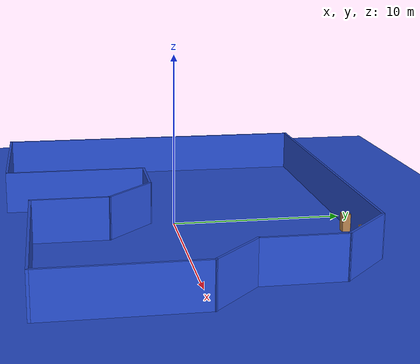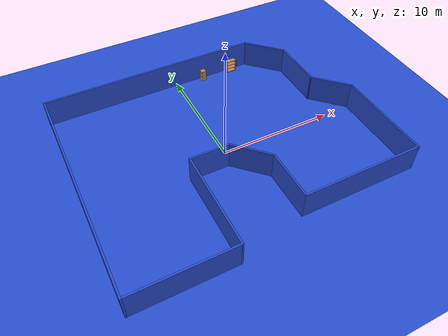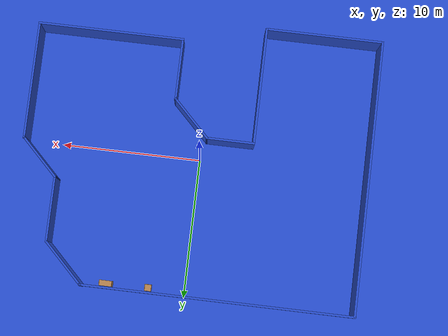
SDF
<sdf version="1.7">
 <world name="default">
  <light name="sun" type="directional">
   <pose>0 0 10 0 -0 0</pose>
   <diffuse>0.8 0.8 0.8 1</diffuse>
   <specular>0.2 0.2 0.2 1</specular>
   <attenuation>
    <range>1000</range>
    <constant>0.9</constant>
    <linear>0.01</linear>
    <quadratic>0.001</quadratic>
   </attenuation>
   <direction>-0.5 0.1 -0.9</direction>
   <spot><inner_angle>0</inner_angle><outer_angle>0</outer_angle><falloff>0</falloff></spot>
  </light>
  <model name="ground_plane">
   <static>1</static>
   <link name="link">
    <collision name="collision">
     <geometry><plane><normal>0 0 1</normal><size>100 100</size></plane></geometry>
     <surface><friction><ode><mu>100</mu><mu2>50</mu2></ode></friction></surface>
    </collision>
    <visual name="visual">
     <cast_shadows>0</cast_shadows>
     <geometry><plane><normal>0 0 1</normal><size>100 100</size></plane></geometry>
     <material>
      <script><uri>file://media/materials/scripts/gazebo.material</uri><name>Gazebo/Blue</name></script>
     </material>
    </visual>
   </link>
  </model>
  <gravity>0 0 -9.8</gravity>
  <magnetic_field>6e-06 2.3e-05 -4.2e-05</magnetic_field>
  <atmosphere type="adiabatic"/>
  <physics type="ode">
   <max_step_size>0.001</max_step_size>
   <real_time_factor>1</real_time_factor>
   <real_time_update_rate>1000</real_time_update_rate>
  </physics>
  <scene><ambient>0.4 0.4 0.4 1</ambient><background>0.7 0.7 0.7 1</background><shadows>1</shadows></scene>
  <spherical_coordinates>
   <surface_model>EARTH_WGS84</surface_model>
   <latitude_deg>0</latitude_deg>
   <longitude_deg>0</longitude_deg>
   <elevation>0</elevation>
   <heading_deg>0</heading_deg>
  </spherical_coordinates>
  <model name="new_wall">
   <pose>0.258076 0.128318 0 0 -0 0</pose>
   <link name="Wall_10">
    <collision name="Wall_10_Collision">
     <geometry><box><size>8.5 0.15 2.5</size></box></geometry>
     <pose>0 0 1.25 0 -0 0</pose>
    </collision>
    <visual name="Wall_10_Visual">
     <pose>0 0 1.25 0 -0 0</pose>
     <geometry><box><size>8.5 0.15 2.5</size></box></geometry>
     <material>
      <script><uri>file://media/materials/scripts/gazebo.material</uri><name>Gazebo/Blue</name></script>
      <ambient>1 1 1 1</ambient>
     </material>
     <meta><layer>0</layer></meta>
    </visual>
    <pose>12.2934 -4.2223 0 0 -0 1.5708</pose>
   </link>
   <link name="Wall_11">
    <collision name="Wall_11_Collision">
     <geometry><box><size>3.75 0.15 2.5</size></box></geometry>
     <pose>0 0 1.25 0 -0 0</pose>
    </collision>
    <visual name="Wall_11_Visual">
     <pose>0 0 1.25 0 -0 0</pose>
     <geometry><box><size>3.75 0.15 2.5</size></box></geometry>
     <material>
      <script><uri>file://media/materials/scripts/gazebo.material</uri><name>Gazebo/Blue</name></script>
      <ambient>1 1 1 1</ambient>
     </material>
     <meta><layer>0</layer></meta>
    </visual>
    <pose>11.0206 1.2255 0 0 -0 2.35619</pose>
   </link>
   <link name="Wall_12">
    <collision name="Wall_12_Collision">
     <geometry><box><size>4.75 0.15 2.5</size></box></geometry>
     <pose>0 0 1.25 0 -0 0</pose>
    </collision>
    <visual name="Wall_12_Visual">
     <pose>0 0 1.25 0 -0 0</pose>
     <geometry><box><size>4.75 0.15 2.5</size></box></geometry>
     <material>
      <script><uri>file://media/materials/scripts/gazebo.material</uri><name>Gazebo/Blue</name></script>
      <ambient>1 1 1 1</ambient>
     </material>
     <meta><layer>0</layer></meta>
    </visual>
    <pose>9.74785 4.79829 0 0 -0 1.5708</pose>
   </link>
   <link name="Wall_13">
    <collision name="Wall_13_Collision">
     <geometry><box><size>4 0.15 2.5</size></box></geometry>
     <pose>0 0 1.25 0 -0 0</pose>
    </collision>
    <visual name="Wall_13_Visual">
     <pose>0 0 1.25 0 -0 0</pose>
     <geometry><box><size>4 0.15 2.5</size></box></geometry>
     <material>
      <script><uri>file://media/materials/scripts/gazebo.material</uri><name>Gazebo/Blue</name></script>
      <ambient>1 1 1 1</ambient>
     </material>
     <meta><layer>0</layer></meta>
    </visual>
    <pose>8.38667 8.45947 0 0 -0 2.35619</pose>
   </link>
   <link name="Wall_14">
    <collision name="Wall_14_Collision">
     <geometry><box><size>19.5 0.15 2.5</size></box></geometry>
     <pose>0 0 1.25 0 -0 0</pose>
    </collision>
    <visual name="Wall_14_Visual">
     <pose>0 0 1.25 0 -0 0</pose>
     <geometry><box><size>19.5 0.15 2.5</size></box></geometry>
     <material>
      <script><uri>file://media/materials/scripts/gazebo.material</uri><name>Gazebo/Blue</name></script>
      <ambient>1 1 1 1</ambient>
     </material>
     <meta><layer>0</layer></meta>
    </visual>
    <pose>-2.64951 9.82065 0 0 -0 3.14159</pose>
   </link>
   <link name="Wall_3">
    <collision name="Wall_3_Collision">
     <geometry><box><size>19.75 0.15 2.5</size></box></geometry>
     <pose>0 0 1.25 0 -0 0</pose>
    </collision>
    <visual name="Wall_3_Visual">
     <pose>0 0 1.25 0 -0 0</pose>
     <geometry><box><size>19.75 0.15 2.5</size></box></geometry>
     <material>
      <script><uri>file://media/materials/scripts/gazebo.material</uri><name>Gazebo/Blue</name></script>
      <ambient>1 1 1 1</ambient>
     </material>
     <meta><layer>0</layer></meta>
    </visual>
    <pose>-12.3021 -0.051713 0 0 -0 -1.5708</pose>
   </link>
   <link name="Wall_4">
    <collision name="Wall_4_Collision">
     <geometry><box><size>8.5 0.15 2.5</size></box></geometry>
     <pose>0 0 1.25 0 -0 0</pose>
    </collision>
    <visual name="Wall_4_Visual">
     <pose>0 0 1.25 0 -0 0</pose>
     <geometry><box><size>8.5 0.15 2.5</size></box></geometry>
     <material>
      <script><uri>file://media/materials/scripts/gazebo.material</uri><name>Gazebo/Blue</name></script>
      <ambient>1 1 1 1</ambient>
     </material>
     <meta><layer>0</layer></meta>
    </visual>
    <pose>-8.12715 -9.85171 0 0 -0 0</pose>
   </link>
   <link name="Wall_5">
    <collision name="Wall_5_Collision">
     <geometry><box><size>8.5 0.15 2.5</size></box></geometry>
     <pose>0 0 1.25 0 -0 0</pose>
    </collision>
    <visual name="Wall_5_Visual">
     <pose>0 0 1.25 0 -0 0</pose>
     <geometry><box><size>8.5 0.15 2.5</size></box></geometry>
     <material>
      <script><uri>file://media/materials/scripts/gazebo.material</uri><name>Gazebo/Blue</name></script>
      <ambient>1 1 1 1</ambient>
     </material>
     <meta><layer>0</layer></meta>
    </visual>
    <pose>-3.95215 -5.67671 0 0 -0 1.5708</pose>
   </link>
   <link name="Wall_6">
    <collision name="Wall_6_Collision">
     <geometry><box><size>3.5 0.15 2.5</size></box></geometry>
     <pose>0 0 1.25 0 -0 0</pose>
    </collision>
    <visual name="Wall_6_Visual">
     <pose>0 0 1.25 0 -0 0</pose>
     <geometry><box><size>3.5 0.15 2.5</size></box></geometry>
     <material>
      <script><uri>file://media/materials/scripts/gazebo.material</uri><name>Gazebo/Blue</name></script>
      <ambient>1 1 1 1</ambient>
     </material>
     <meta><layer>0</layer></meta>
    </visual>
    <pose>-2.27714 -1.50171 0 0 -0 0</pose>
   </link>
   <link name="Wall_7">
    <collision name="Wall_7_Collision">
     <geometry><box><size>3.75 0.15 2.5</size></box></geometry>
     <pose>0 0 1.25 0 -0 0</pose>
    </collision>
    <visual name="Wall_7_Visual">
     <pose>0 0 1.25 0 -0 0</pose>
     <geometry><box><size>3.75 0.15 2.5</size></box></geometry>
     <material>
      <script><uri>file://media/materials/scripts/gazebo.material</uri><name>Gazebo/Blue</name></script>
      <ambient>1 1 1 1</ambient>
     </material>
     <meta><layer>0</layer></meta>
    </visual>
    <pose>0.670647 -2.7745 0 0 -0 -0.785398</pose>
   </link>
   <link name="Wall_8">
    <collision name="Wall_8_Collision">
     <geometry><box><size>4.5 0.15 2.5</size></box></geometry>
     <pose>0 0 1.25 0 -0 0</pose>
    </collision>
    <visual name="Wall_8_Visual">
     <pose>0 0 1.25 0 -0 0</pose>
     <geometry><box><size>4.5 0.15 2.5</size></box></geometry>
     <material>
      <script><uri>file://media/materials/scripts/gazebo.material</uri><name>Gazebo/Blue</name></script>
      <ambient>1 1 1 1</ambient>
     </material>
     <meta><layer>0</layer></meta>
    </visual>
    <pose>1.94344 -6.2223 0 0 -0 -1.5708</pose>
   </link>
   <link name="Wall_9">
    <collision name="Wall_9_Collision">
     <geometry><box><size>10.5 0.15 2.5</size></box></geometry>
     <pose>0 0 1.25 0 -0 0</pose>
    </collision>
    <visual name="Wall_9_Visual">
     <pose>0 0 1.25 0 -0 0</pose>
     <geometry><box><size>10.5 0.15 2.5</size></box></geometry>
     <material>
      <script><uri>file://media/materials/scripts/gazebo.material</uri><name>Gazebo/Blue</name></script>
      <ambient>1 1 1 1</ambient>
     </material>
     <meta><layer>0</layer></meta>
    </visual>
    <pose>7.11844 -8.3973 0 0 -0 0</pose>
   </link>
   <static>1</static>
  </model>
  <model name="cabinet">
   <static>1</static>
   <link name="cabinet_bottom_plate">
    <inertial>
     <pose>0 0 -1 0 -0 0</pose>
     <inertia><ixx>2.05</ixx><ixy>0</ixy><ixz>0</ixz><iyy>2.05</iyy><iyz>0</iyz><izz>2.05</izz></inertia>
     <mass>25</mass>
    </inertial>
    <collision name="cabinet_bottom_plate_geom">
     <pose>0 0 0.01 0 -0 0</pose>
     <geometry><box><size>0.45 0.45 0.02</size></box></geometry>
    </collision>
    <visual name="cabinet_bottom_plate_geom_visual">
     <pose>0 0 0.01 0 -0 0</pose>
     <geometry><box><size>0.45 0.45 0.02</size></box></geometry>
     <material>
      <script><uri>file://media/materials/scripts/gazebo.material</uri><name>Gazebo/Wood</name></script>
     </material>
    </visual>
    <collision name="cabinet_bottom_plate_geom_cabinet_back_plate">
     <pose>0.235 0 0.51 0 -0 0</pose>
     <geometry><box><size>0.02 0.45 1.02</size></box></geometry>
    </collision>
    <visual name="cabinet_bottom_plate_geom_cabinet_back_plate_visual">
     <pose>0.235 0 0.51 0 -0 0</pose>
     <geometry><box><size>0.02 0.45 1.02</size></box></geometry>
     <material>
      <script><uri>file://media/materials/scripts/gazebo.material</uri><name>Gazebo/Wood</name></script>
     </material>
    </visual>
    <collision name="cabinet_bottom_plate_geom_cabinet_left_plate">
     <pose>0 0.235 0.51 0 -0 0</pose>
     <geometry><box><size>0.45 0.02 1.02</size></box></geometry>
    </collision>
    <visual name="cabinet_bottom_plate_geom_cabinet_left_plate_visual">
     <pose>0 0.235 0.51 0 -0 0</pose>
     <geometry><box><size>0.45 0.02 1.02</size></box></geometry>
     <material>
      <script><uri>file://media/materials/scripts/gazebo.material</uri><name>Gazebo/Wood</name></script>
     </material>
    </visual>
    <collision name="cabinet_bottom_plate_geom_cabinet_middle_plate">
     <pose>0 0 0.51 0 -0 0</pose>
     <geometry><box><size>0.45 0.45 0.02</size></box></geometry>
    </collision>
    <visual name="cabinet_bottom_plate_geom_cabinet_middle_plate_visual">
     <pose>0 0 0.51 0 -0 0</pose>
     <geometry><box><size>0.45 0.45 0.02</size></box></geometry>
     <material>
      <script><uri>file://media/materials/scripts/gazebo.material</uri><name>Gazebo/Wood</name></script>
     </material>
    </visual>
    <collision name="cabinet_bottom_plate_geom_cabinet_right_plate">
     <pose>0 -0.235 0.51 0 -0 0</pose>
     <geometry><box><size>0.45 0.02 1.02</size></box></geometry>
    </collision>
    <visual name="cabinet_bottom_plate_geom_cabinet_right_plate_visual">
     <pose>0 -0.235 0.51 0 -0 0</pose>
     <geometry><box><size>0.45 0.02 1.02</size></box></geometry>
     <material>
      <script><uri>file://media/materials/scripts/gazebo.material</uri><name>Gazebo/Wood</name></script>
     </material>
    </visual>
    <collision name="cabinet_bottom_plate_geom_cabinet_top_plate">
     <pose>0 0 1.01 0 -0 0</pose>
     <geometry><box><size>0.45 0.45 0.02</size></box></geometry>
    </collision>
    <visual name="cabinet_bottom_plate_geom_cabinet_top_plate_visual">
     <pose>0 0 1.01 0 -0 0</pose>
     <geometry><box><size>0.45 0.45 0.02</size></box></geometry>
     <material>
      <script><uri>file://media/materials/scripts/gazebo.material</uri><name>Gazebo/Wood</name></script>
     </material>
    </visual>
   </link>
   <pose>2.58267 9.59506 0 0 -0 0</pose>
  </model>
  <model name="bookshelf">
   <static>1</static>
   <link name="link">
    <inertial><mass>1</mass></inertial>
    <collision name="back">
     <pose>0 0.005 0.6 0 -0 0</pose>
     <geometry><box><size>0.9 0.01 1.2</size></box></geometry>
    </collision>
    <visual name="visual1">
     <pose>0 0.005 0.6 0 -0 0</pose>
     <geometry><box><size>0.9 0.01 1.2</size></box></geometry>
     <material>
      <script><uri>file://media/materials/scripts/gazebo.material</uri><name>Gazebo/Wood</name></script>
     </material>
    </visual>
    <collision name="left_side">
     <pose>0.45 -0.195 0.6 0 -0 0</pose>
     <geometry><box><size>0.02 0.4 1.2</size></box></geometry>
    </collision>
    <visual name="visual2">
     <pose>0.45 -0.195 0.6 0 -0 0</pose>
     <geometry><box><size>0.02 0.4 1.2</size></box></geometry>
     <material>
      <script><uri>file://media/materials/scripts/gazebo.material</uri><name>Gazebo/Wood</name></script>
     </material>
    </visual>
    <collision name="right_side">
     <pose>-0.45 -0.195 0.6 0 -0 0</pose>
     <geometry><box><size>0.02 0.4 1.2</size></box></geometry>
    </collision>
    <visual name="visual3">
     <pose>-0.45 -0.195 0.6 0 -0 0</pose>
     <geometry><box><size>0.02 0.4 1.2</size></box></geometry>
     <material>
      <script><uri>file://media/materials/scripts/gazebo.material</uri><name>Gazebo/Wood</name></script>
     </material>
    </visual>
    <collision name="bottom">
     <pose>0 -0.195 0.03 0 -0 0</pose>
     <geometry><box><size>0.88 0.4 0.06</size></box></geometry>
    </collision>
    <visual name="visual4">
     <pose>0 -0.195 0.03 0 -0 0</pose>
     <geometry><box><size>0.88 0.4 0.06</size></box></geometry>
     <material>
      <script><uri>file://media/materials/scripts/gazebo.material</uri><name>Gazebo/Wood</name></script>
     </material>
    </visual>
    <collision name="top">
     <pose>0 -0.195 1.19 0 -0 0</pose>
     <geometry><box><size>0.88 0.4 0.02</size></box></geometry>
    </collision>
    <visual name="visual5">
     <pose>0 -0.195 1.19 0 -0 0</pose>
     <geometry><box><size>0.88 0.4 0.02</size></box></geometry>
     <material>
      <script><uri>file://media/materials/scripts/gazebo.material</uri><name>Gazebo/Wood</name></script>
     </material>
    </visual>
    <collision name="low_shelf">
     <pose>0 -0.195 0.43 0 -0 0</pose>
     <geometry><box><size>0.88 0.4 0.02</size></box></geometry>
    </collision>
    <visual name="visual6">
     <pose>0 -0.195 0.43 0 -0 0</pose>
     <geometry><box><size>0.88 0.4 0.02</size></box></geometry>
     <material>
      <script><uri>file://media/materials/scripts/gazebo.material</uri><name>Gazebo/Wood</name></script>
     </material>
    </visual>
    <collision name="high_shelf">
     <pose>0 -0.195 0.8 0 -0 0</pose>
     <geometry><box><size>0.88 0.4 0.02</size></box></geometry>
    </collision>
    <visual name="visual7">
     <pose>0 -0.195 0.8 0 -0 0</pose>
     <geometry><box><size>0.88 0.4 0.02</size></box></geometry>
     <material>
      <script><uri>file://media/materials/scripts/gazebo.material</uri><name>Gazebo/Wood</name></script>
     </material>
    </visual>
   </link>
   <pose>5.61557 9.82902 0 0 -0 0</pose>
  </model>
 </world>
</sdf>
